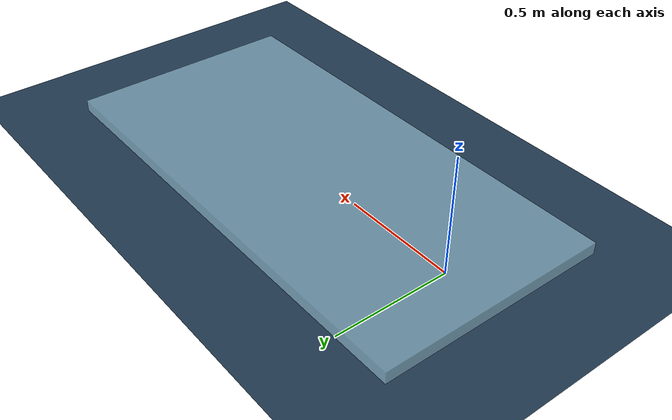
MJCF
<?xml version="1.0" encoding="utf-8"?>

<mujoco model="irb120_scene">
	<compiler angle="radian" meshdir="."/>

	<option timestep="0.001" tolerance="1e-9" integrator="implicitfast" iterations="100" ls_iterations="100">
		<flag warmstart="enable" multiccd="enable"/>
	</option>

	<visual>
		<global offwidth="1280" offheight="720"/>
	</visual>

	<!-- v ROBOT actuators will inject here v -->
	{actuator_block}
	<!-- v ROBOT actuators will inject here v -->

	<size njmax="500" nconmax="100" />

	<asset>
		<material name="MatObject" specular="0.75" shininess="0.1" reflectance="0.5" rgba="0.9 0.7 0.5 1" />

		<texture type="skybox" builtin= "flat" rgb1="0.2 0.3 0.4" rgb2="0 0 0" width="512" height="512"/>
		<texture name="grid" type="2d" builtin="checker" rgb1=".1 .2 .3" rgb2=".2 .3 .4" width="300" height="300"/>

		<material name="floor_mat" specular="0" shininess="0.5" reflectance="0" rgba="0.2 0.2 0.2 1"/>
		<material name="table_mat" specular="0" shininess="0.5" reflectance="0" rgba="0.57 0.75 0.83 0.8"/>
		<material name="block_mat" specular="0" shininess="0.5" reflectance="0" rgba="1 0.2 0.2 1"/>
		<material name="robot0:geomMat" shininess="0.03" specular="0.4"/>
		<material name="robot0:gripper_finger_mat" shininess="0.03" specular="0.4" reflectance="0"/>
		<material name="robot0:gripper_mat" shininess="0.03" specular="0.4" reflectance="0"/>
		<material name="robot0:base_mat" shininess="0.03" specular="0.4" reflectance="0"/>
		<material name="grid_mat" texture="grid" texrepeat="8 8" reflectance="0.2"/>

		<mesh name="base_link" file="robot/visual/base_link.stl"/>
		<mesh name="link_1" file="robot/visual/link_1.stl"/>
		<mesh name="link_2" file="robot/visual/link_2.stl"/>
		<mesh name="link_3" file="robot/visual/link_3.stl"/>
		<mesh name="link_4" file="robot/visual/link_4.stl"/>
		<mesh name="link_5" file="robot/visual/link_5.stl"/>
		<mesh name="link_6" file="robot/visual/link_6.stl"/>
		<mesh name="pusher_link" file="robot/visual/pusher_link.stl"/>

		<mesh name="flashlight_exp" file="objects/flashlight/flashlight_exp.stl"/>
		<mesh name="heart_exp" file="objects/heart/heart_exp.stl"/>
		<mesh name="L_exp" file="objects/L/L_exp.stl"/>
		<mesh name="monitor_exp" file="objects/monitor/monitor_exp.stl"/>
		<mesh name="soda_exp" file="objects/soda/soda_exp.stl"/>
	</asset>

	<default>
		<default class="grab">
			<joint limited="false" margin="0.01" armature="0.001" damping="0" frictionloss="0.001" />
			<geom type="mesh" rgba=".93 .99 .97 1.0"/>
			<site size="0.005 0 0" rgba="0.4 0.9 0.4 1" />
			<default class="object_col">
				<geom type="mesh" density="1250" contype="1" conaffinity="1" friction="1 0.5 0.01" margin="0.0005" condim="4" rgba=".3 .4 .5 1" group="3"/>
			</default>
		</default>
	</default>

	<!-- v Per-object assets (meshes, mats) will inject here v -->
	{asset_block}
	<!-- ^ Per-object assets (meshes, mats) will inject here ^ -->

	<worldbody>
		<geom name="floor" size="5 5 5" type="plane" material="grid_mat"/>

		<!-- Table Surface === Recall geom SIZE is half-dims so table surface is z=0.1 (fric was 1, 0.005. 0.0001)-->
		<body pos="0.75 0 0" name="table0">
			<geom size="1 0.5 0.05" type="box" name="table" mass="2000" material="table_mat" friction="0 0 0"></geom>
			<site name="site:table" pos="0 0 0" size = "0.02 0.02 0.02" type="box" rgba="1 1 0 0"></site>
		</body>

		<!-- v Object body will inject here v -->
		{object_block}
		<!-- ^ Object body will inject here ^ -->

		<light directional="true" ambient="0.2 0.2 0.2" diffuse="0.8 0.8 0.8" specular="0.3 0.3 0.3" castshadow="false" pos="0 0 4" dir="0 0 -1" name="light0"></light>
	</worldbody>
</mujoco>
